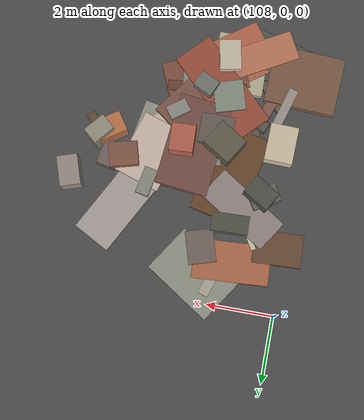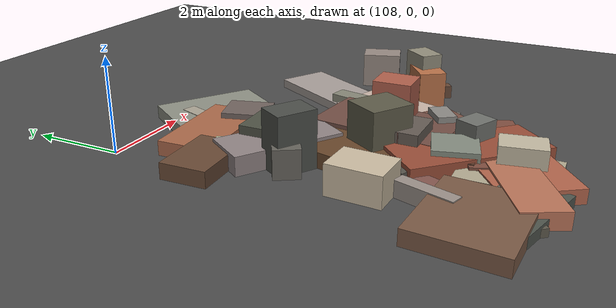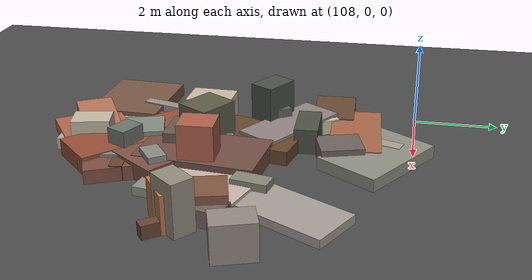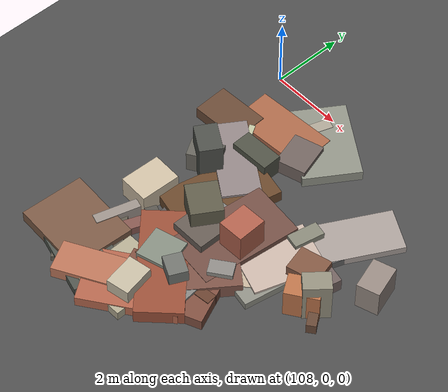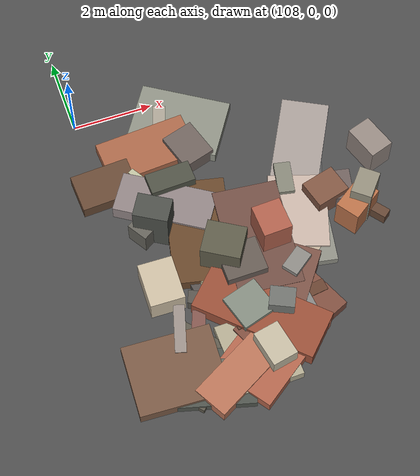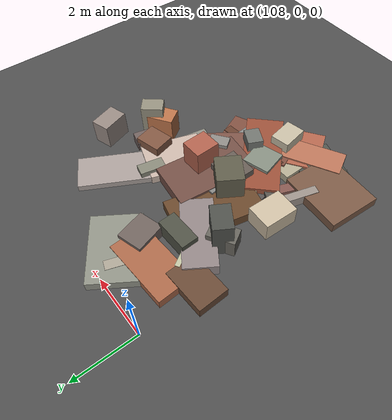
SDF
<sdf version="1.6">
 <world name="navitas_arena">
  <model name="ground_plane">
   <static>true</static>
   <link name="link">
    <collision name="collision">
     <geometry><plane><normal>0 0 1</normal><size>400 400</size></plane></geometry>
     <surface><friction><ode><mu>0.800</mu><mu2>0.800</mu2></ode></friction></surface>
    </collision>
    <visual name="visual">
     <cast_shadows>false</cast_shadows>
     <geometry><plane><normal>0 0 1</normal><size>400 400</size></plane></geometry>
     <material>
      <specular>0.04 0.04 0.04 1</specular>
      <script>
       <uri>file://media/materials/scripts/navitas_asphalt.material</uri>
       <name>Navitas/RealArenaAsphalt</name>
      </script>
     </material>
    </visual>
   </link>
  </model>
  <model name="deb_zor_5">
   <static>true</static>
   <pose>113.563 -3.444 0.000 0 0 0</pose>
   <link name="link">
    <collision name="col_0">
     <pose>1.094 0.312 0.406 0.000 0.000 1.884</pose>
     <geometry><box><size>0.898 0.617 0.812</size></box></geometry>
    </collision>
    <visual name="vis_0">
     <pose>1.094 0.312 0.406 0.000 0.000 1.884</pose>
     <geometry><box><size>0.898 0.617 0.812</size></box></geometry>
     <material>
      <ambient>0.54 0.50 0.47 1</ambient>
      <diffuse>0.59 0.54 0.51 1</diffuse>
      <specular>0.05 0.05 0.045 1</specular>
     </material>
    </visual>
    <collision name="col_1">
     <pose>-0.973 -0.006 0.090 0.000 0.000 -0.016</pose>
     <geometry><box><size>1.126 0.307 0.181</size></box></geometry>
    </collision>
    <visual name="vis_1">
     <pose>-0.973 -0.006 0.090 0.000 0.000 -0.016</pose>
     <geometry><box><size>1.126 0.307 0.181</size></box></geometry>
     <material>
      <ambient>0.62 0.59 0.55 1</ambient>
      <diffuse>0.67 0.64 0.59 1</diffuse>
      <specular>0.05 0.05 0.045 1</specular>
     </material>
    </visual>
    <collision name="col_2">
     <pose>-0.557 0.843 0.101 0.000 0.000 1.075</pose>
     <geometry><box><size>2.905 1.190 0.201</size></box></geometry>
    </collision>
    <visual name="vis_2">
     <pose>-0.557 0.843 0.101 0.000 0.000 1.075</pose>
     <geometry><box><size>2.905 1.190 0.201</size></box></geometry>
     <material>
      <ambient>0.61 0.57 0.55 1</ambient>
      <diffuse>0.66 0.62 0.60 1</diffuse>
      <specular>0.05 0.05 0.045 1</specular>
     </material>
    </visual>
    <collision name="col_3">
     <pose>-1.187 0.180 0.190 0.000 0.000 1.366</pose>
     <geometry><box><size>0.827 0.406 0.381</size></box></geometry>
    </collision>
    <visual name="vis_3">
     <pose>-1.187 0.180 0.190 0.000 0.000 1.366</pose>
     <geometry><box><size>0.827 0.406 0.381</size></box></geometry>
     <material>
      <ambient>0.49 0.49 0.44 1</ambient>
      <diffuse>0.53 0.53 0.47 1</diffuse>
      <specular>0.05 0.05 0.045 1</specular>
     </material>
    </visual>
    <collision name="col_4">
     <pose>-0.523 -0.368 0.099 0.000 0.000 1.220</pose>
     <geometry><box><size>2.343 0.244 0.199</size></box></geometry>
    </collision>
    <visual name="vis_4">
     <pose>-0.523 -0.368 0.099 0.000 0.000 1.220</pose>
     <geometry><box><size>2.343 0.244 0.199</size></box></geometry>
     <material>
      <ambient>0.35 0.35 0.35 1</ambient>
      <diffuse>0.38 0.38 0.38 1</diffuse>
      <specular>0.05 0.05 0.045 1</specular>
     </material>
    </visual>
   </link>
  </model>
  <model name="deb_zor_64">
   <static>true</static>
   <pose>110.186 -6.591 0.000 0 0 0</pose>
   <link name="link">
    <collision name="col_0">
     <pose>0.393 -0.678 0.149 0.000 0.000 0.616</pose>
     <geometry><box><size>2.540 1.576 0.299</size></box></geometry>
    </collision>
    <visual name="vis_0">
     <pose>0.393 -0.678 0.149 0.000 0.000 0.616</pose>
     <geometry><box><size>2.540 1.576 0.299</size></box></geometry>
     <material>
      <ambient>0.65 0.37 0.28 1</ambient>
      <diffuse>0.70 0.40 0.30 1</diffuse>
      <specular>0.05 0.05 0.045 1</specular>
     </material>
    </visual>
    <collision name="col_1">
     <pose>1.027 -0.154 0.162 0.000 0.000 0.410</pose>
     <geometry><box><size>2.418 1.311 0.324</size></box></geometry>
    </collision>
    <visual name="vis_1">
     <pose>1.027 -0.154 0.162 0.000 0.000 0.410</pose>
     <geometry><box><size>2.418 1.311 0.324</size></box></geometry>
     <material>
      <ambient>0.46 0.29 0.23 1</ambient>
      <diffuse>0.50 0.31 0.25 1</diffuse>
      <specular>0.05 0.05 0.045 1</specular>
     </material>
    </visual>
    <collision name="col_2">
     <pose>0.714 0.512 0.163 0.000 0.000 1.393</pose>
     <geometry><box><size>0.448 0.170 0.326</size></box></geometry>
    </collision>
    <visual name="vis_2">
     <pose>0.714 0.512 0.163 0.000 0.000 1.393</pose>
     <geometry><box><size>0.448 0.170 0.326</size></box></geometry>
     <material>
      <ambient>0.37 0.35 0.31 1</ambient>
      <diffuse>0.40 0.38 0.33 1</diffuse>
      <specular>0.05 0.05 0.045 1</specular>
     </material>
    </visual>
    <collision name="col_3">
     <pose>-1.255 -0.174 0.119 0.000 0.000 1.205</pose>
     <geometry><box><size>1.913 0.319 0.238</size></box></geometry>
    </collision>
    <visual name="vis_3">
     <pose>-1.255 -0.174 0.119 0.000 0.000 1.205</pose>
     <geometry><box><size>1.913 0.319 0.238</size></box></geometry>
     <material>
      <ambient>0.49 0.32 0.29 1</ambient>
      <diffuse>0.52 0.34 0.31 1</diffuse>
      <specular>0.05 0.05 0.045 1</specular>
     </material>
    </visual>
    <collision name="col_4">
     <pose>-0.539 -1.055 0.172 0.000 0.000 0.502</pose>
     <geometry><box><size>2.074 0.884 0.345</size></box></geometry>
    </collision>
    <visual name="vis_4">
     <pose>-0.539 -1.055 0.172 0.000 0.000 0.502</pose>
     <geometry><box><size>2.074 0.884 0.345</size></box></geometry>
     <material>
      <ambient>0.68 0.43 0.33 1</ambient>
      <diffuse>0.73 0.46 0.35 1</diffuse>
      <specular>0.05 0.05 0.045 1</specular>
     </material>
    </visual>
    <collision name="col_5">
     <pose>0.944 0.183 0.389 0.000 0.000 1.127</pose>
     <geometry><box><size>0.500 0.610 0.778</size></box></geometry>
    </collision>
    <visual name="vis_5">
     <pose>0.944 0.183 0.389 0.000 0.000 1.127</pose>
     <geometry><box><size>0.500 0.610 0.778</size></box></geometry>
     <material>
      <ambient>0.41 0.41 0.40 1</ambient>
      <diffuse>0.44 0.45 0.43 1</diffuse>
      <specular>0.05 0.05 0.045 1</specular>
     </material>
    </visual>
    <collision name="col_6">
     <pose>0.905 0.009 0.178 0.000 0.000 2.014</pose>
     <geometry><box><size>1.644 0.194 0.356</size></box></geometry>
    </collision>
    <visual name="vis_6">
     <pose>0.905 0.009 0.178 0.000 0.000 2.014</pose>
     <geometry><box><size>1.644 0.194 0.356</size></box></geometry>
     <material>
      <ambient>0.46 0.44 0.40 1</ambient>
      <diffuse>0.50 0.48 0.43 1</diffuse>
      <specular>0.05 0.05 0.045 1</specular>
     </material>
    </visual>
   </link>
  </model>
  <model name="deb_zor_66">
   <static>true</static>
   <pose>113.497 -4.153 0.000 0 0 0</pose>
   <link name="link">
    <collision name="col_0">
     <pose>0.467 -0.287 0.583 0.000 0.000 -0.699</pose>
     <geometry><box><size>0.512 0.710 1.165</size></box></geometry>
    </collision>
    <visual name="vis_0">
     <pose>0.467 -0.287 0.583 0.000 0.000 -0.699</pose>
     <geometry><box><size>0.512 0.710 1.165</size></box></geometry>
     <material>
      <ambient>0.53 0.52 0.45 1</ambient>
      <diffuse>0.58 0.56 0.49 1</diffuse>
      <specular>0.05 0.05 0.045 1</specular>
     </material>
    </visual>
    <collision name="col_1">
     <pose>0.103 0.250 0.189 0.000 0.000 1.363</pose>
     <geometry><box><size>0.797 0.552 0.378</size></box></geometry>
    </collision>
    <visual name="vis_1">
     <pose>0.103 0.250 0.189 0.000 0.000 1.363</pose>
     <geometry><box><size>0.797 0.552 0.378</size></box></geometry>
     <material>
      <ambient>0.40 0.35 0.35 1</ambient>
      <diffuse>0.44 0.38 0.37 1</diffuse>
      <specular>0.05 0.05 0.045 1</specular>
     </material>
    </visual>
    <collision name="col_2">
     <pose>0.225 -0.463 0.422 0.000 0.000 0.598</pose>
     <geometry><box><size>0.902 0.613 0.844</size></box></geometry>
    </collision>
    <visual name="vis_2">
     <pose>0.225 -0.463 0.422 0.000 0.000 0.598</pose>
     <geometry><box><size>0.902 0.613 0.844</size></box></geometry>
     <material>
      <ambient>0.67 0.42 0.27 1</ambient>
      <diffuse>0.73 0.45 0.29 1</diffuse>
      <specular>0.05 0.05 0.045 1</specular>
     </material>
    </visual>
    <collision name="col_3">
     <pose>0.394 -0.192 0.151 0.000 0.000 -0.923</pose>
     <geometry><box><size>1.658 0.257 0.302</size></box></geometry>
    </collision>
    <visual name="vis_3">
     <pose>0.394 -0.192 0.151 0.000 0.000 -0.923</pose>
     <geometry><box><size>1.658 0.257 0.302</size></box></geometry>
     <material>
      <ambient>0.37 0.26 0.19 1</ambient>
      <diffuse>0.40 0.28 0.21 1</diffuse>
      <specular>0.05 0.05 0.045 1</specular>
     </material>
    </visual>
   </link>
  </model>
  <model name="deb_zor_77">
   <static>true</static>
   <pose>109.403 -3.425 0.000 0 0 0</pose>
   <link name="link">
    <collision name="col_0">
     <pose>0.026 0.487 0.202 0.000 0.000 -0.578</pose>
     <geometry><box><size>2.375 1.024 0.404</size></box></geometry>
    </collision>
    <visual name="vis_0">
     <pose>0.026 0.487 0.202 0.000 0.000 -0.578</pose>
     <geometry><box><size>2.375 1.024 0.404</size></box></geometry>
     <material>
      <ambient>0.53 0.48 0.48 1</ambient>
      <diffuse>0.57 0.52 0.52 1</diffuse>
      <specular>0.05 0.05 0.045 1</specular>
     </material>
    </visual>
    <collision name="col_1">
     <pose>-0.414 0.453 0.108 0.000 0.000 1.173</pose>
     <geometry><box><size>0.308 0.182 0.216</size></box></geometry>
    </collision>
    <visual name="vis_1">
     <pose>-0.414 0.453 0.108 0.000 0.000 1.173</pose>
     <geometry><box><size>0.308 0.182 0.216</size></box></geometry>
     <material>
      <ambient>0.74 0.68 0.59 1</ambient>
      <diffuse>0.79 0.74 0.64 1</diffuse>
      <specular>0.05 0.05 0.045 1</specular>
     </material>
    </visual>
    <collision name="col_2">
     <pose>-0.544 0.024 0.302 0.000 0.000 0.552</pose>
     <geometry><box><size>0.878 0.545 0.604</size></box></geometry>
    </collision>
    <visual name="vis_2">
     <pose>-0.544 0.024 0.302 0.000 0.000 0.552</pose>
     <geometry><box><size>0.878 0.545 0.604</size></box></geometry>
     <material>
      <ambient>0.37 0.36 0.33 1</ambient>
      <diffuse>0.40 0.39 0.36 1</diffuse>
      <specular>0.05 0.05 0.045 1</specular>
     </material>
    </visual>
    <collision name="col_3">
     <pose>0.554 -0.495 0.166 0.000 0.000 1.353</pose>
     <geometry><box><size>2.717 1.496 0.333</size></box></geometry>
    </collision>
    <visual name="vis_3">
     <pose>0.554 -0.495 0.166 0.000 0.000 1.353</pose>
     <geometry><box><size>2.717 1.496 0.333</size></box></geometry>
     <material>
      <ambient>0.38 0.26 0.15 1</ambient>
      <diffuse>0.41 0.28 0.17 1</diffuse>
      <specular>0.05 0.05 0.045 1</specular>
     </material>
    </visual>
   </link>
  </model>
  <model name="deb_zor_116">
   <static>true</static>
   <pose>111.213 -5.076 0.000 0 0 0</pose>
   <link name="link">
    <collision name="col_0">
     <pose>-0.231 0.397 0.174 0.000 0.000 0.810</pose>
     <geometry><box><size>0.275 0.171 0.348</size></box></geometry>
    </collision>
    <visual name="vis_0">
     <pose>-0.231 0.397 0.174 0.000 0.000 0.810</pose>
     <geometry><box><size>0.275 0.171 0.348</size></box></geometry>
     <material>
      <ambient>0.76 0.69 0.62 1</ambient>
      <diffuse>0.82 0.75 0.67 1</diffuse>
      <specular>0.05 0.05 0.045 1</specular>
     </material>
    </visual>
    <collision name="col_1">
     <pose>-0.611 -0.040 0.321 0.000 0.000 1.575</pose>
     <geometry><box><size>0.891 0.994 0.641</size></box></geometry>
    </collision>
    <visual name="vis_1">
     <pose>-0.611 -0.040 0.321 0.000 0.000 1.575</pose>
     <geometry><box><size>0.891 0.994 0.641</size></box></geometry>
     <material>
      <ambient>0.37 0.34 0.30 1</ambient>
      <diffuse>0.40 0.36 0.33 1</diffuse>
      <specular>0.05 0.05 0.045 1</specular>
     </material>
    </visual>
    <collision name="col_2">
     <pose>-0.196 -0.967 0.067 0.000 0.000 1.558</pose>
     <geometry><box><size>0.259 0.358 0.134</size></box></geometry>
    </collision>
    <visual name="vis_2">
     <pose>-0.196 -0.967 0.067 0.000 0.000 1.558</pose>
     <geometry><box><size>0.259 0.358 0.134</size></box></geometry>
     <material>
      <ambient>0.74 0.68 0.61 1</ambient>
      <diffuse>0.80 0.73 0.66 1</diffuse>
      <specular>0.05 0.05 0.045 1</specular>
     </material>
    </visual>
    <collision name="col_3">
     <pose>-0.383 -0.795 0.148 0.000 0.000 0.689</pose>
     <geometry><box><size>1.514 0.945 0.296</size></box></geometry>
    </collision>
    <visual name="vis_3">
     <pose>-0.383 -0.795 0.148 0.000 0.000 0.689</pose>
     <geometry><box><size>1.514 0.945 0.296</size></box></geometry>
     <material>
      <ambient>0.52 0.51 0.49 1</ambient>
      <diffuse>0.56 0.55 0.53 1</diffuse>
      <specular>0.05 0.05 0.045 1</specular>
     </material>
    </visual>
    <collision name="col_4">
     <pose>0.538 0.114 0.113 0.000 0.000 2.292</pose>
     <geometry><box><size>1.533 1.379 0.225</size></box></geometry>
    </collision>
    <visual name="vis_4">
     <pose>0.538 0.114 0.113 0.000 0.000 2.292</pose>
     <geometry><box><size>1.533 1.379 0.225</size></box></geometry>
     <material>
      <ambient>0.71 0.65 0.57 1</ambient>
      <diffuse>0.77 0.70 0.61 1</diffuse>
      <specular>0.05 0.05 0.045 1</specular>
     </material>
    </visual>
    <collision name="col_5">
     <pose>0.755 -0.409 0.070 0.000 0.000 0.931</pose>
     <geometry><box><size>0.453 0.346 0.139</size></box></geometry>
    </collision>
    <visual name="vis_5">
     <pose>0.755 -0.409 0.070 0.000 0.000 0.931</pose>
     <geometry><box><size>0.453 0.346 0.139</size></box></geometry>
     <material>
      <ambient>0.46 0.32 0.26 1</ambient>
      <diffuse>0.50 0.35 0.28 1</diffuse>
      <specular>0.05 0.05 0.045 1</specular>
     </material>
    </visual>
   </link>
  </model>
  <model name="deb_zor_132">
   <static>true</static>
   <pose>110.556 -6.739 0.000 0 0 0</pose>
   <link name="link">
    <collision name="col_0">
     <pose>0.299 0.478 0.121 0.000 0.000 1.769</pose>
     <geometry><box><size>1.638 0.235 0.243</size></box></geometry>
    </collision>
    <visual name="vis_0">
     <pose>0.299 0.478 0.121 0.000 0.000 1.769</pose>
     <geometry><box><size>1.638 0.235 0.243</size></box></geometry>
     <material>
      <ambient>0.33 0.32 0.26 1</ambient>
      <diffuse>0.35 0.34 0.28 1</diffuse>
      <specular>0.05 0.05 0.045 1</specular>
     </material>
    </visual>
    <collision name="col_1">
     <pose>-0.151 0.530 0.257 0.000 0.000 1.857</pose>
     <geometry><box><size>0.905 0.906 0.513</size></box></geometry>
    </collision>
    <visual name="vis_1">
     <pose>-0.151 0.530 0.257 0.000 0.000 1.857</pose>
     <geometry><box><size>0.905 0.906 0.513</size></box></geometry>
     <material>
      <ambient>0.48 0.51 0.46 1</ambient>
      <diffuse>0.52 0.55 0.50 1</diffuse>
      <specular>0.05 0.05 0.045 1</specular>
     </material>
    </visual>
    <collision name="col_2">
     <pose>0.552 0.340 0.174 0.000 0.000 3.264</pose>
     <geometry><box><size>2.355 0.297 0.348</size></box></geometry>
    </collision>
    <visual name="vis_2">
     <pose>0.552 0.340 0.174 0.000 0.000 3.264</pose>
     <geometry><box><size>2.355 0.297 0.348</size></box></geometry>
     <material>
      <ambient>0.38 0.24 0.18 1</ambient>
      <diffuse>0.41 0.26 0.19 1</diffuse>
      <specular>0.05 0.05 0.045 1</specular>
     </material>
    </visual>
    <collision name="col_3">
     <pose>0.317 0.281 0.088 0.000 0.000 2.567</pose>
     <geometry><box><size>0.186 0.318 0.175</size></box></geometry>
    </collision>
    <visual name="vis_3">
     <pose>0.317 0.281 0.088 0.000 0.000 2.567</pose>
     <geometry><box><size>0.186 0.318 0.175</size></box></geometry>
     <material>
      <ambient>0.65 0.41 0.31 1</ambient>
      <diffuse>0.70 0.45 0.33 1</diffuse>
      <specular>0.05 0.05 0.045 1</specular>
     </material>
    </visual>
    <collision name="col_4">
     <pose>0.089 0.338 0.204 0.000 0.000 2.363</pose>
     <geometry><box><size>3.080 1.236 0.408</size></box></geometry>
    </collision>
    <visual name="vis_4">
     <pose>0.089 0.338 0.204 0.000 0.000 2.363</pose>
     <geometry><box><size>3.080 1.236 0.408</size></box></geometry>
     <material>
      <ambient>0.55 0.29 0.20 1</ambient>
      <diffuse>0.60 0.31 0.22 1</diffuse>
      <specular>0.05 0.05 0.045 1</specular>
     </material>
    </visual>
    <collision name="col_5">
     <pose>0.031 -0.673 0.349 0.000 0.000 3.335</pose>
     <geometry><box><size>0.638 0.895 0.699</size></box></geometry>
    </collision>
    <visual name="vis_5">
     <pose>0.031 -0.673 0.349 0.000 0.000 3.335</pose>
     <geometry><box><size>0.638 0.895 0.699</size></box></geometry>
     <material>
      <ambient>0.71 0.68 0.60 1</ambient>
      <diffuse>0.77 0.73 0.64 1</diffuse>
      <specular>0.05 0.05 0.045 1</specular>
     </material>
    </visual>
    <collision name="col_6">
     <pose>-0.319 -0.544 0.133 0.000 0.000 3.160</pose>
     <geometry><box><size>1.543 1.781 0.266</size></box></geometry>
    </collision>
    <visual name="vis_6">
     <pose>-0.319 -0.544 0.133 0.000 0.000 3.160</pose>
     <geometry><box><size>1.543 1.781 0.266</size></box></geometry>
     <material>
      <ambient>0.64 0.62 0.52 1</ambient>
      <diffuse>0.70 0.67 0.57 1</diffuse>
      <specular>0.05 0.05 0.045 1</specular>
     </material>
    </visual>
   </link>
  </model>
  <model name="deb_zor_180">
   <static>true</static>
   <pose>111.306 -4.754 0.000 0 0 0</pose>
   <link name="link">
    <collision name="col_0">
     <pose>0.435 0.719 0.066 0.000 0.000 1.518</pose>
     <geometry><box><size>0.200 0.387 0.132</size></box></geometry>
    </collision>
    <visual name="vis_0">
     <pose>0.435 0.719 0.066 0.000 0.000 1.518</pose>
     <geometry><box><size>0.200 0.387 0.132</size></box></geometry>
     <material>
      <ambient>0.70 0.65 0.57 1</ambient>
      <diffuse>0.75 0.70 0.62 1</diffuse>
      <specular>0.05 0.05 0.045 1</specular>
     </material>
    </visual>
    <collision name="col_1">
     <pose>-0.212 -0.733 0.196 0.000 0.000 1.673</pose>
     <geometry><box><size>2.917 1.307 0.392</size></box></geometry>
    </collision>
    <visual name="vis_1">
     <pose>-0.212 -0.733 0.196 0.000 0.000 1.673</pose>
     <geometry><box><size>2.917 1.307 0.392</size></box></geometry>
     <material>
      <ambient>0.48 0.48 0.47 1</ambient>
      <diffuse>0.52 0.52 0.51 1</diffuse>
      <specular>0.05 0.05 0.045 1</specular>
     </material>
    </visual>
    <collision name="col_2">
     <pose>0.102 -0.800 0.203 0.000 0.000 0.934</pose>
     <geometry><box><size>1.463 1.628 0.406</size></box></geometry>
    </collision>
    <visual name="vis_2">
     <pose>0.102 -0.800 0.203 0.000 0.000 0.934</pose>
     <geometry><box><size>1.463 1.628 0.406</size></box></geometry>
     <material>
      <ambient>0.45 0.30 0.26 1</ambient>
      <diffuse>0.49 0.33 0.28 1</diffuse>
      <specular>0.05 0.05 0.045 1</specular>
     </material>
    </visual>
    <collision name="col_3">
     <pose>-0.577 0.210 0.120 0.000 0.000 -0.515</pose>
     <geometry><box><size>1.675 1.312 0.239</size></box></geometry>
    </collision>
    <visual name="vis_3">
     <pose>-0.577 0.210 0.120 0.000 0.000 -0.515</pose>
     <geometry><box><size>1.675 1.312 0.239</size></box></geometry>
     <material>
      <ambient>0.60 0.37 0.26 1</ambient>
      <diffuse>0.65 0.40 0.28 1</diffuse>
      <specular>0.05 0.05 0.045 1</specular>
     </material>
    </visual>
    <collision name="col_4">
     <pose>0.740 -0.067 0.102 0.000 0.000 -0.180</pose>
     <geometry><box><size>1.876 1.440 0.205</size></box></geometry>
    </collision>
    <visual name="vis_4">
     <pose>0.740 -0.067 0.102 0.000 0.000 -0.180</pose>
     <geometry><box><size>1.876 1.440 0.205</size></box></geometry>
     <material>
      <ambient>0.52 0.52 0.48 1</ambient>
      <diffuse>0.56 0.56 0.52 1</diffuse>
      <specular>0.05 0.05 0.045 1</specular>
     </material>
    </visual>
   </link>
  </model>
  <model name="deb_zor_249">
   <static>true</static>
   <pose>108.630 -7.518 0.000 0 0 0</pose>
   <link name="link">
    <collision name="col_0">
     <pose>-0.366 0.393 0.160 0.000 0.000 3.091</pose>
     <geometry><box><size>2.130 1.752 0.319</size></box></geometry>
    </collision>
    <visual name="vis_0">
     <pose>-0.366 0.393 0.160 0.000 0.000 3.091</pose>
     <geometry><box><size>2.130 1.752 0.319</size></box></geometry>
     <material>
      <ambient>0.44 0.32 0.25 1</ambient>
      <diffuse>0.48 0.35 0.27 1</diffuse>
      <specular>0.05 0.05 0.045 1</specular>
     </material>
    </visual>
    <collision name="col_1">
     <pose>-0.102 -0.154 0.100 0.000 0.000 3.119</pose>
     <geometry><box><size>1.268 0.188 0.200</size></box></geometry>
    </collision>
    <visual name="vis_1">
     <pose>-0.102 -0.154 0.100 0.000 0.000 3.119</pose>
     <geometry><box><size>1.268 0.188 0.200</size></box></geometry>
     <material>
      <ambient>0.32 0.32 0.32 1</ambient>
      <diffuse>0.34 0.35 0.34 1</diffuse>
      <specular>0.05 0.05 0.045 1</specular>
     </material>
    </visual>
    <collision name="col_2">
     <pose>0.120 0.415 0.150 0.000 0.000 2.778</pose>
     <geometry><box><size>1.502 0.216 0.300</size></box></geometry>
    </collision>
    <visual name="vis_2">
     <pose>0.120 0.415 0.150 0.000 0.000 2.778</pose>
     <geometry><box><size>1.502 0.216 0.300</size></box></geometry>
     <material>
      <ambient>0.39 0.38 0.34 1</ambient>
      <diffuse>0.42 0.41 0.36 1</diffuse>
      <specular>0.05 0.05 0.045 1</specular>
     </material>
    </visual>
    <collision name="col_3">
     <pose>0.475 0.072 0.137 0.000 0.000 1.642</pose>
     <geometry><box><size>0.481 0.447 0.274</size></box></geometry>
    </collision>
    <visual name="vis_3">
     <pose>0.475 0.072 0.137 0.000 0.000 1.642</pose>
     <geometry><box><size>0.481 0.447 0.274</size></box></geometry>
     <material>
      <ambient>0.41 0.37 0.37 1</ambient>
      <diffuse>0.44 0.40 0.40 1</diffuse>
      <specular>0.05 0.05 0.045 1</specular>
     </material>
    </visual>
    <collision name="col_4">
     <pose>0.303 0.003 0.112 0.000 0.000 2.876</pose>
     <geometry><box><size>2.129 1.395 0.224</size></box></geometry>
    </collision>
    <visual name="vis_4">
     <pose>0.303 0.003 0.112 0.000 0.000 2.876</pose>
     <geometry><box><size>2.129 1.395 0.224</size></box></geometry>
     <material>
      <ambient>0.29 0.30 0.28 1</ambient>
      <diffuse>0.31 0.33 0.30 1</diffuse>
      <specular>0.05 0.05 0.045 1</specular>
     </material>
    </visual>
    <collision name="col_5">
     <pose>0.311 0.096 0.132 0.000 0.000 0.767</pose>
     <geometry><box><size>0.408 0.261 0.263</size></box></geometry>
    </collision>
    <visual name="vis_5">
     <pose>0.311 0.096 0.132 0.000 0.000 0.767</pose>
     <geometry><box><size>0.408 0.261 0.263</size></box></geometry>
     <material>
      <ambient>0.43 0.44 0.37 1</ambient>
      <diffuse>0.46 0.47 0.39 1</diffuse>
      <specular>0.05 0.05 0.045 1</specular>
     </material>
    </visual>
    <collision name="col_6">
     <pose>0.099 0.404 0.081 0.000 0.000 0.706</pose>
     <geometry><box><size>1.679 1.496 0.161</size></box></geometry>
    </collision>
    <visual name="vis_6">
     <pose>0.099 0.404 0.081 0.000 0.000 0.706</pose>
     <geometry><box><size>1.679 1.496 0.161</size></box></geometry>
     <material>
      <ambient>0.35 0.33 0.28 1</ambient>
      <diffuse>0.37 0.35 0.30 1</diffuse>
      <specular>0.05 0.05 0.045 1</specular>
     </material>
    </visual>
   </link>
  </model>
  <model name="deb_zor_282">
   <static>true</static>
   <pose>109.877 -1.198 0.000 0 0 0</pose>
   <link name="link">
    <collision name="col_0">
     <pose>0.150 -0.261 0.144 0.000 0.000 0.547</pose>
     <geometry><box><size>0.312 0.192 0.288</size></box></geometry>
    </collision>
    <visual name="vis_0">
     <pose>0.150 -0.261 0.144 0.000 0.000 0.547</pose>
     <geometry><box><size>0.312 0.192 0.288</size></box></geometry>
     <material>
      <ambient>0.39 0.38 0.33 1</ambient>
      <diffuse>0.42 0.41 0.36 1</diffuse>
      <specular>0.05 0.05 0.045 1</specular>
     </material>
    </visual>
    <collision name="col_1">
     <pose>0.444 0.210 0.092 0.000 0.000 1.279</pose>
     <geometry><box><size>0.461 0.389 0.184</size></box></geometry>
    </collision>
    <visual name="vis_1">
     <pose>0.444 0.210 0.092 0.000 0.000 1.279</pose>
     <geometry><box><size>0.461 0.389 0.184</size></box></geometry>
     <material>
      <ambient>0.57 0.35 0.23 1</ambient>
      <diffuse>0.61 0.38 0.25 1</diffuse>
      <specular>0.05 0.05 0.045 1</specular>
     </material>
    </visual>
    <collision name="col_2">
     <pose>0.666 0.006 0.064 0.000 0.000 1.549</pose>
     <geometry><box><size>0.445 0.452 0.128</size></box></geometry>
    </collision>
    <visual name="vis_2">
     <pose>0.666 0.006 0.064 0.000 0.000 1.549</pose>
     <geometry><box><size>0.445 0.452 0.128</size></box></geometry>
     <material>
      <ambient>0.73 0.72 0.63 1</ambient>
      <diffuse>0.79 0.78 0.68 1</diffuse>
      <specular>0.05 0.05 0.045 1</specular>
     </material>
    </visual>
    <collision name="col_3">
     <pose>0.075 0.342 0.152 0.000 0.000 1.245</pose>
     <geometry><box><size>1.260 0.311 0.304</size></box></geometry>
    </collision>
    <visual name="vis_3">
     <pose>0.075 0.342 0.152 0.000 0.000 1.245</pose>
     <geometry><box><size>1.260 0.311 0.304</size></box></geometry>
     <material>
      <ambient>0.62 0.59 0.54 1</ambient>
      <diffuse>0.67 0.64 0.58 1</diffuse>
      <specular>0.05 0.05 0.045 1</specular>
     </material>
    </visual>
    <collision name="col_4">
     <pose>0.572 -0.437 0.216 0.000 0.000 1.861</pose>
     <geometry><box><size>0.988 0.832 0.433</size></box></geometry>
    </collision>
    <visual name="vis_4">
     <pose>0.572 -0.437 0.216 0.000 0.000 1.861</pose>
     <geometry><box><size>0.988 0.832 0.433</size></box></geometry>
     <material>
      <ambient>0.41 0.36 0.34 1</ambient>
      <diffuse>0.44 0.39 0.37 1</diffuse>
      <specular>0.05 0.05 0.045 1</specular>
     </material>
    </visual>
    <collision name="col_5">
     <pose>0.612 0.387 0.147 0.000 0.000 -0.580</pose>
     <geometry><box><size>2.268 1.559 0.294</size></box></geometry>
    </collision>
    <visual name="vis_5">
     <pose>0.612 0.387 0.147 0.000 0.000 -0.580</pose>
     <geometry><box><size>2.268 1.559 0.294</size></box></geometry>
     <material>
      <ambient>0.52 0.52 0.48 1</ambient>
      <diffuse>0.56 0.57 0.52 1</diffuse>
      <specular>0.05 0.05 0.045 1</specular>
     </material>
    </visual>
    <collision name="col_6">
     <pose>-0.398 -0.154 0.158 0.000 0.000 0.063</pose>
     <geometry><box><size>2.282 1.182 0.317</size></box></geometry>
    </collision>
    <visual name="vis_6">
     <pose>-0.398 -0.154 0.158 0.000 0.000 0.063</pose>
     <geometry><box><size>2.282 1.182 0.317</size></box></geometry>
     <material>
      <ambient>0.62 0.38 0.27 1</ambient>
      <diffuse>0.67 0.41 0.29 1</diffuse>
      <specular>0.05 0.05 0.045 1</specular>
     </material>
    </visual>
   </link>
  </model>
  <model name="deb_zor_284">
   <static>true</static>
   <pose>112.577 -4.959 0.000 0 0 0</pose>
   <link name="link">
    <collision name="col_0">
     <pose>-0.751 -0.590 0.274 0.000 0.000 0.632</pose>
     <geometry><box><size>0.641 0.410 0.548</size></box></geometry>
    </collision>
    <visual name="vis_0">
     <pose>-0.751 -0.590 0.274 0.000 0.000 0.632</pose>
     <geometry><box><size>0.641 0.410 0.548</size></box></geometry>
     <material>
      <ambient>0.51 0.50 0.48 1</ambient>
      <diffuse>0.55 0.54 0.52 1</diffuse>
      <specular>0.05 0.05 0.045 1</specular>
     </material>
    </visual>
    <collision name="col_1">
     <pose>-0.174 0.778 0.133 0.000 0.000 1.251</pose>
     <geometry><box><size>1.945 1.429 0.267</size></box></geometry>
    </collision>
    <visual name="vis_1">
     <pose>-0.174 0.778 0.133 0.000 0.000 1.251</pose>
     <geometry><box><size>1.945 1.429 0.267</size></box></geometry>
     <material>
      <ambient>0.73 0.66 0.61 1</ambient>
      <diffuse>0.79 0.71 0.66 1</diffuse>
      <specular>0.05 0.05 0.045 1</specular>
     </material>
    </visual>
    <collision name="col_2">
     <pose>0.609 1.029 0.284 0.000 0.000 0.258</pose>
     <geometry><box><size>0.860 0.719 0.569</size></box></geometry>
    </collision>
    <visual name="vis_2">
     <pose>0.609 1.029 0.284 0.000 0.000 0.258</pose>
     <geometry><box><size>0.860 0.719 0.569</size></box></geometry>
     <material>
      <ambient>0.47 0.32 0.24 1</ambient>
      <diffuse>0.51 0.34 0.26 1</diffuse>
      <specular>0.05 0.05 0.045 1</specular>
     </material>
    </visual>
    <collision name="col_3">
     <pose>-1.053 0.354 0.612 0.000 0.000 1.610</pose>
     <geometry><box><size>0.811 0.710 1.224</size></box></geometry>
    </collision>
    <visual name="vis_3">
     <pose>-1.053 0.354 0.612 0.000 0.000 1.610</pose>
     <geometry><box><size>0.811 0.710 1.224</size></box></geometry>
     <material>
      <ambient>0.64 0.36 0.28 1</ambient>
      <diffuse>0.69 0.38 0.30 1</diffuse>
      <specular>0.05 0.05 0.045 1</specular>
     </material>
    </visual>
   </link>
  </model>
  <model name="deb_zor_298">
   <static>true</static>
   <pose>108.786 -2.563 0.000 0 0 0</pose>
   <link name="link">
    <collision name="col_0">
     <pose>-0.582 0.584 0.170 0.000 0.000 3.189</pose>
     <geometry><box><size>1.459 0.982 0.341</size></box></geometry>
    </collision>
    <visual name="vis_0">
     <pose>-0.582 0.584 0.170 0.000 0.000 3.189</pose>
     <geometry><box><size>1.459 0.982 0.341</size></box></geometry>
     <material>
      <ambient>0.38 0.27 0.19 1</ambient>
      <diffuse>0.41 0.29 0.21 1</diffuse>
      <specular>0.05 0.05 0.045 1</specular>
     </material>
    </visual>
    <collision name="col_1">
     <pose>0.934 0.109 0.296 0.000 0.000 3.175</pose>
     <geometry><box><size>1.120 0.550 0.593</size></box></geometry>
    </collision>
    <visual name="vis_1">
     <pose>0.934 0.109 0.296 0.000 0.000 3.175</pose>
     <geometry><box><size>1.120 0.550 0.593</size></box></geometry>
     <material>
      <ambient>0.29 0.30 0.25 1</ambient>
      <diffuse>0.31 0.32 0.27 1</diffuse>
      <specular>0.05 0.05 0.045 1</specular>
     </material>
    </visual>
    <collision name="col_2">
     <pose>0.639 -0.139 0.173 0.000 0.000 2.114</pose>
     <geometry><box><size>2.054 0.154 0.345</size></box></geometry>
    </collision>
    <visual name="vis_2">
     <pose>0.639 -0.139 0.173 0.000 0.000 2.114</pose>
     <geometry><box><size>2.054 0.154 0.345</size></box></geometry>
     <material>
      <ambient>0.69 0.70 0.59 1</ambient>
      <diffuse>0.75 0.76 0.63 1</diffuse>
      <specular>0.05 0.05 0.045 1</specular>
     </material>
    </visual>
    <collision name="col_3">
     <pose>0.194 -0.860 0.606 0.000 0.000 2.595</pose>
     <geometry><box><size>0.853 0.612 1.213</size></box></geometry>
    </collision>
    <visual name="vis_3">
     <pose>0.194 -0.860 0.606 0.000 0.000 2.595</pose>
     <geometry><box><size>0.853 0.612 1.213</size></box></geometry>
     <material>
      <ambient>0.28 0.29 0.27 1</ambient>
      <diffuse>0.30 0.31 0.29 1</diffuse>
      <specular>0.05 0.05 0.045 1</specular>
     </material>
    </visual>
   </link>
  </model>
  <model name="deb_zor_299">
   <static>true</static>
   <pose>108.708 -5.417 0.000 0 0 0</pose>
   <link name="link">
    <collision name="col_0">
     <pose>0.610 -0.146 0.158 0.000 0.000 1.165</pose>
     <geometry><box><size>0.327 0.407 0.316</size></box></geometry>
    </collision>
    <visual name="vis_0">
     <pose>0.610 -0.146 0.158 0.000 0.000 1.165</pose>
     <geometry><box><size>0.327 0.407 0.316</size></box></geometry>
     <material>
      <ambient>0.31 0.30 0.28 1</ambient>
      <diffuse>0.34 0.33 0.30 1</diffuse>
      <specular>0.05 0.05 0.045 1</specular>
     </material>
    </visual>
    <collision name="col_1">
     <pose>1.043 -0.037 0.114 0.000 0.000 3.241</pose>
     <geometry><box><size>0.374 0.279 0.229</size></box></geometry>
    </collision>
    <visual name="vis_1">
     <pose>1.043 -0.037 0.114 0.000 0.000 3.241</pose>
     <geometry><box><size>0.374 0.279 0.229</size></box></geometry>
     <material>
      <ambient>0.45 0.42 0.40 1</ambient>
      <diffuse>0.49 0.46 0.43 1</diffuse>
      <specular>0.05 0.05 0.045 1</specular>
     </material>
    </visual>
    <collision name="col_2">
     <pose>1.037 0.289 0.159 0.000 0.000 1.190</pose>
     <geometry><box><size>0.363 0.318 0.319</size></box></geometry>
    </collision>
    <visual name="vis_2">
     <pose>1.037 0.289 0.159 0.000 0.000 1.190</pose>
     <geometry><box><size>0.363 0.318 0.319</size></box></geometry>
     <material>
      <ambient>0.65 0.62 0.50 1</ambient>
      <diffuse>0.70 0.67 0.54 1</diffuse>
      <specular>0.05 0.05 0.045 1</specular>
     </material>
    </visual>
    <collision name="col_3">
     <pose>-0.077 0.373 0.314 0.000 0.000 1.541</pose>
     <geometry><box><size>1.114 0.843 0.628</size></box></geometry>
    </collision>
    <visual name="vis_3">
     <pose>-0.077 0.373 0.314 0.000 0.000 1.541</pose>
     <geometry><box><size>1.114 0.843 0.628</size></box></geometry>
     <material>
      <ambient>0.74 0.68 0.60 1</ambient>
      <diffuse>0.80 0.74 0.64 1</diffuse>
      <specular>0.05 0.05 0.045 1</specular>
     </material>
    </visual>
    <collision name="col_4">
     <pose>-0.019 -0.783 0.171 0.000 0.000 1.285</pose>
     <geometry><box><size>1.197 0.272 0.343</size></box></geometry>
    </collision>
    <visual name="vis_4">
     <pose>-0.019 -0.783 0.171 0.000 0.000 1.285</pose>
     <geometry><box><size>1.197 0.272 0.343</size></box></geometry>
     <material>
      <ambient>0.56 0.53 0.50 1</ambient>
      <diffuse>0.61 0.57 0.54 1</diffuse>
      <specular>0.05 0.05 0.045 1</specular>
     </material>
    </visual>
   </link>
  </model>
  <model name="deb_zor_300">
   <static>true</static>
   <pose>110.806 -5.056 0.000 0 0 0</pose>
   <link name="link">
    <collision name="col_0">
     <pose>-0.506 0.091 0.098 0.000 0.000 0.148</pose>
     <geometry><box><size>2.038 1.610 0.195</size></box></geometry>
    </collision>
    <visual name="vis_0">
     <pose>-0.506 0.091 0.098 0.000 0.000 0.148</pose>
     <geometry><box><size>2.038 1.610 0.195</size></box></geometry>
     <material>
      <ambient>0.32 0.30 0.29 1</ambient>
      <diffuse>0.34 0.32 0.31 1</diffuse>
      <specular>0.05 0.05 0.045 1</specular>
     </material>
    </visual>
    <collision name="col_1">
     <pose>-0.517 0.329 0.562 0.000 0.000 2.585</pose>
     <geometry><box><size>0.958 0.841 1.124</size></box></geometry>
    </collision>
    <visual name="vis_1">
     <pose>-0.517 0.329 0.562 0.000 0.000 2.585</pose>
     <geometry><box><size>0.958 0.841 1.124</size></box></geometry>
     <material>
      <ambient>0.35 0.33 0.27 1</ambient>
      <diffuse>0.37 0.36 0.29 1</diffuse>
      <specular>0.05 0.05 0.045 1</specular>
     </material>
    </visual>
    <collision name="col_2">
     <pose>0.163 0.134 0.150 0.000 0.000 1.096</pose>
     <geometry><box><size>1.515 0.728 0.300</size></box></geometry>
    </collision>
    <visual name="vis_2">
     <pose>0.163 0.134 0.150 0.000 0.000 1.096</pose>
     <geometry><box><size>1.515 0.728 0.300</size></box></geometry>
     <material>
      <ambient>0.51 0.51 0.51 1</ambient>
      <diffuse>0.55 0.55 0.55 1</diffuse>
      <specular>0.05 0.05 0.045 1</specular>
     </material>
    </visual>
    <collision name="col_3">
     <pose>-0.371 -0.021 0.317 0.000 0.000 2.823</pose>
     <geometry><box><size>0.578 0.390 0.634</size></box></geometry>
    </collision>
    <visual name="vis_3">
     <pose>-0.371 -0.021 0.317 0.000 0.000 2.823</pose>
     <geometry><box><size>0.578 0.390 0.634</size></box></geometry>
     <material>
      <ambient>0.49 0.33 0.29 1</ambient>
      <diffuse>0.53 0.36 0.31 1</diffuse>
      <specular>0.05 0.05 0.045 1</specular>
     </material>
    </visual>
    <collision name="col_4">
     <pose>0.390 0.466 0.208 0.000 0.000 1.464</pose>
     <geometry><box><size>2.780 1.597 0.415</size></box></geometry>
    </collision>
    <visual name="vis_4">
     <pose>0.390 0.466 0.208 0.000 0.000 1.464</pose>
     <geometry><box><size>2.780 1.597 0.415</size></box></geometry>
     <material>
      <ambient>0.42 0.29 0.25 1</ambient>
      <diffuse>0.45 0.31 0.27 1</diffuse>
      <specular>0.05 0.05 0.045 1</specular>
     </material>
    </visual>
   </link>
  </model>
 </world>
</sdf>
